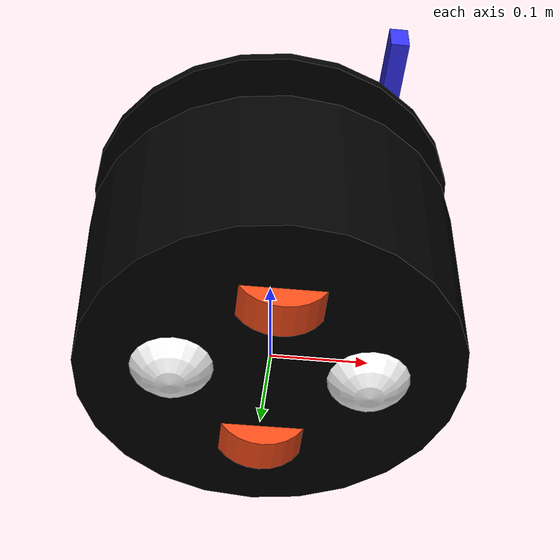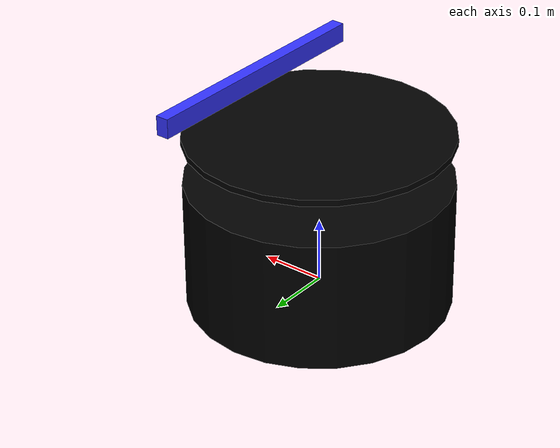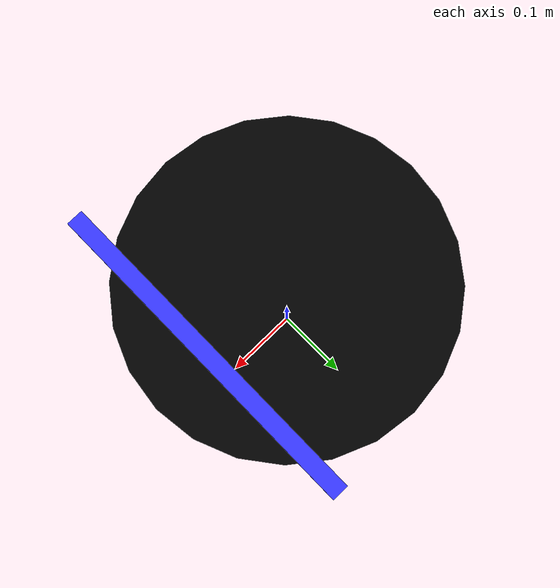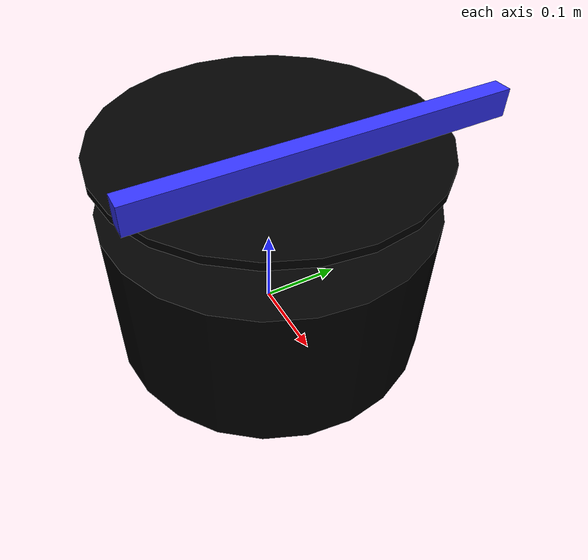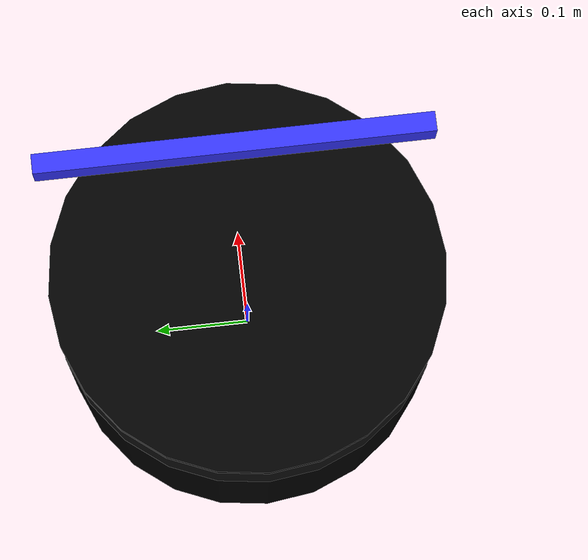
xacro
<?xml version="1.0"?>
<robot xmlns:xacro="http://www.ros.org/wiki/xacro"  name="robot">

    <xacro:include filename="inertial_macros.xacro" />
    <xacro:include filename="black_donut.xacro" />

    <xacro:include filename="ros2_control.xacro" />

    <xacro:include filename="lidar.xacro" />

    <xacro:include filename="depth_camera.xacro" />

    <xacro:include filename="gps.xacro" />
    <xacro:include filename="imu.xacro" />

</robot>

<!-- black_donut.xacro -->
<robot xmlns:xacro="http://www.ros.org/wiki/xacro" name="black_donut">

    <xacro:include filename="inertial_macros.xacro"/>

    <material name="white">
        <color rgba="1 1 1 1" />
    </material>

    <material name="orange">
        <color rgba="1 0.3 0.1 1"/>
    </material>

    <material name="blue">
        <color rgba="0.2 0.2 1 1"/>
    </material>

    <material name="black">
        <color rgba="0 0 0 1"/>
    </material>

    <!-- BASE_FOOTPRINT LINK -->

    <link name="base_footprint">

    </link>

    <!-- BASE LINK -->

    <joint name="base_link_joint" type="fixed">
        <parent link="base_footprint"/>
        <child link="base_link"/>
        <origin xyz="0 0 0"/>
    </joint>

    <link name="base_link">
        <visual>
            <origin xyz="0 0 0.075"/>
            <geometry>
                <cylinder radius="0.2" length="0.2"/>
            </geometry>1
            <material name="black"/>
        </visual>
        <collision>
            <origin xyz="0 0 0.075"/>
            <geometry>
                <box size="0.3 0.3 0.15"/>
            </geometry>
        </collision>
        <xacro:inertial_box mass="0.5" x="0.3" y="0.3" z="0.15">
            <origin xyz="0 0 0.075" rpy="0 0 0"/>
        </xacro:inertial_box>
    </link>

    <!-- TOP PLATE-->
    <joint name="hat_joint" type="fixed">
        <parent link="base_link"/>
        <child link="hat_link"/>
        <origin xyz="0 0 0"/>
    </joint>

    <link name="hat_link">
        <visual>
            <origin xyz="0 0 0.245"/>
            <geometry>
                <cylinder radius="0.2" length="0.01"/>
            </geometry>1
            <material name="black"/>
        </visual>
        <collision>
            <origin xyz="0 0 0.245"/>
            <geometry>
                <box size="0.3 0.3 0.15"/>
            </geometry>
        </collision>
        <xacro:inertial_box mass="0.1" x="0.1" y="0.1" z="0.1">
            <origin xyz="0 0 0.245" rpy="0 0 0"/>
        </xacro:inertial_box>
    </link>

    <!-- LEFT WHEEL LINK -->

    <joint name="left_wheel_joint" type="continuous">
        <parent link="base_link"/>
        <child link="left_wheel"/>
        <origin xyz="0 0.1 0" rpy="-${pi/2} 0 0" />
        <axis xyz="0 0 1"/>
    </joint>

    <link name="left_wheel">
        <visual>
            <geometry>
                <cylinder radius="0.05" length="0.04"/>
            </geometry>
            <material name="orange"/>
        </visual>
        <collision>
            <geometry>
                <cylinder radius="0.05" length="0.04"/>
            </geometry>
        </collision>
        <xacro:inertial_cylinder mass="0.1" length="0.04" radius="0.05">
            <origin xyz="0 0 0" rpy="0 0 0"/>
        </xacro:inertial_cylinder>
    </link>

    <!-- RIGHT WHEEL LINK -->

    <joint name="right_wheel_joint" type="continuous">
        <parent link="base_link"/>
        <child link="right_wheel"/>
        <origin xyz="0 -0.1 0" rpy="${pi/2} 0 0" />
        <axis xyz="0 0 -1"/>
    </joint>

    <link name="right_wheel">
        <visual>
            <geometry>
                <cylinder radius="0.05" length="0.04"/>
            </geometry>
            <material name="orange"/>
        </visual>
        <collision>
            <geometry>
                <cylinder radius="0.05" length="0.04"/>
            </geometry>
        </collision>
        <xacro:inertial_cylinder mass="0.1" length="0.04" radius="0.05">
            <origin xyz="0 0 0" rpy="0 0 0"/>
        </xacro:inertial_cylinder>
    </link>

    <!-- CASTER WHEEL LINK -->

    <joint name="caster_wheel_f_joint" type="fixed">
        <parent link="base_link"/>
        <child link="caster_wheel_f"/>
        <origin xyz="0.1 0 0"/>
    </joint>

    <link name="caster_wheel_f">
        <visual>
            <geometry>
                <sphere radius="0.05"/>
            </geometry>
            <material name="white"/>
        </visual>
        <collision>
            <geometry>
                <sphere radius="0.05"/>
            </geometry>
        </collision>
        <xacro:inertial_sphere mass="0.1" radius="0.05">
            <origin xyz="0 0 0" rpy="0 0 0"/>
        </xacro:inertial_sphere>
    </link>

    <joint name="caster_wheel_joint_b" type="fixed">
        <parent link="base_link"/>
        <child link="caster_wheel_b"/>
        <origin xyz="-0.1 0 0"/>
    </joint>

    <link name="caster_wheel_b">
        <visual>
            <geometry>
                <sphere radius="0.05"/>
            </geometry>
            <material name="white"/>
        </visual>
        <collision>
            <geometry>
                <sphere radius="0.05"/>
            </geometry>
        </collision>
        <xacro:inertial_sphere mass="0.1" radius="0.05">
            <origin xyz="0 0 0" rpy="0 0 0"/>
        </xacro:inertial_sphere>
    </link>

    <gazebo reference="base_link">
        <material>Gazebo/Black</material>
    </gazebo>

    <gazebo reference="right_wheel">
        <material>Gazebo/Orange</material>
    </gazebo>
    <gazebo reference="left_wheel">
        <material>Gazebo/Orange</material>
    </gazebo>
    <gazebo reference="hat_link">
        <material>Gazebo/Black</material>
        <mu1 value="0.001"/>
        <mu2 value="0.001"/>
    </gazebo>

    <gazebo reference="caster_wheel_f">
        <material>Gazebo/Black</material>
        <mu1 value="0.001"/>
        <mu2 value="0.001"/>
    </gazebo>
    <gazebo reference="caster_wheel_b">
        <material>Gazebo/Black</material>
        <mu1 value="0.001"/>
        <mu2 value="0.001"/>
    </gazebo>

</robot>

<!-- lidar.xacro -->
<robot xmlns:xacro="http://www.ros.org/wiki/xacro" >

    <joint name="laser_joint" type="fixed">
        <parent link="base_link"/>
        <child link="laser_frame"/>
        <origin xyz="0 0 0.175" rpy="0 0 0"/>
    </joint>

    <link name="laser_frame">
        <visual>
            <geometry>
                <cylinder radius="0.05" length="0.06"/>
            </geometry>
            <material name="red"/>
        </visual>
        <collision>
            <geometry>
                <cylinder radius="0.05" length="0.06"/>
            </geometry>
        </collision>
        <xacro:inertial_cylinder mass="0.1" length="0.06" radius="0.05">
            <origin xyz="0 0 0" rpy="0 0 0"/>
        </xacro:inertial_cylinder>
    </link>

    <gazebo reference="laser_frame">
        <material>Gazebo/Grey</material>

        <sensor name="base_scan" type="ray">
            <pose> 0 0 0 0 0 0 </pose>
            <visualize>false</visualize>
            <update_rate>10</update_rate>
            <ray>
                <scan>
                    <horizontal>
                        <samples>360</samples>
                        <min_angle>-3.14</min_angle>
                        <max_angle>3.14</max_angle>
                    </horizontal>
                </scan>
                <range>
                    <min>0.3</min>
                    <max>12</max>
                </range>
            </ray>
            <plugin name="laser_controller" filename="libgazebo_ros_ray_sensor.so">
                <ros>
                    <argument>~/out:=scan</argument>
                </ros>
                <output_type>sensor_msgs/LaserScan</output_type>
                <frame_name>laser_frame</frame_name>
            </plugin>
        </sensor>
    </gazebo>

</robot>

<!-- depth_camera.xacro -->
<robot xmlns:xacro="http://www.ros.org/wiki/xacro" >

    <joint name="camera_joint" type="fixed">
        <parent link="base_link"/>
        <child link="camera_frame"/>
        <origin xyz="0 0 0.3" rpy="0 0 0"/>
    </joint>

    <link name="camera_frame">
    </link>

    <joint name="camera_optical_joint" type="fixed">
        <parent link="camera_frame"/>
        <child link="camera_optical_link"/>
        <origin xyz="0.12 0 0" rpy="-1.5707 0 -1.5707"/>
    </joint>

    <link name="camera_optical_link">
        <visual>
            <geometry>
                <box size="0.4 0.03 0.02"/>
            </geometry>
            <material name="blue"/>
        </visual>
        <collision>
            <geometry>
                <box size="0.4 0.03 0.02"/>
            </geometry>
        </collision>
    </link>

    <gazebo reference="camera_frame">
        <material>Gazebo/Blue</material>

        <sensor name="camera" type="depth">
            <pose>0.064 -0.065 0.094  0 0 0 </pose>
            <visualize>true</visualize>
            <update_rate>10</update_rate>
            <camera>
                <horizontal_fov>1.089</horizontal_fov>
                <image>
                    <format>B8G8R8</format>
                    <width>640</width>
                    <height>480</height>
                </image>
                <clip>
                    <near>0.05</near>
                    <far>8.0</far>
                </clip>
            </camera>
            <plugin name="camera_controller" filename="libgazebo_ros_camera.so">
                <frame_name>camera_optical_link</frame_name>
            </plugin>
        </sensor>
    </gazebo>

</robot>

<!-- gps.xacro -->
<robot xmlns:xacro="http://www.ros.org/wiki/xacro" >

    <joint name="gps_joint" type="fixed">
        <parent link="hat_link"/>
        <child link="gps_frame"/>
        <origin xyz="0 0 0.175" rpy="0 0 0"/>
    </joint>

    <link name="gps_frame">
        <visual>
            <geometry>
                <cylinder radius="0.05" length="0.06"/>
            </geometry>
            <material name="red"/>
        </visual>
        <collision>
            <geometry>
                <cylinder radius="0.05" length="0.06"/>
            </geometry>
        </collision>
        <xacro:inertial_cylinder mass="0.1" length="0.06" radius="0.05">
            <origin xyz="0.2 0 0" rpy="0 0 0"/>
        </xacro:inertial_cylinder>
    </link>

    <gazebo reference="gps_frame">
        <material>Gazebo/Orange</material>

        <sensor name="gps" type="gps">
          <always_on>true</always_on>
          <update_rate>1</update_rate>
          <pose>0 0 0 0 0 0</pose>
          <gps>
            <position_sensing>
              <horizontal>
                <noise type="gaussian">
                  <mean>0.0</mean>
                  <stddev>0.01</stddev>
                </noise>
              </horizontal>
              <vertical>
                <noise type="gaussian">
                  <mean>0.0</mean>
                  <stddev>0.01</stddev>
                </noise>
              </vertical>
            </position_sensing>
          </gps>
          <plugin name="gps_plugin" filename="libgazebo_ros_gps_sensor.so">
            <ros>
              <remapping>~/out:=/gps/fix</remapping>
            </ros>
          </plugin>
        </sensor>

    </gazebo>

</robot>

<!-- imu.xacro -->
<robot xmlns:xacro="http://www.ros.org/wiki/xacro" >

    <joint name="imu_joint" type="fixed">
        <parent link="base_link"/>
        <child link="imu_link"/>
        <origin xyz="0 0 0.175" rpy="0 0 0"/>
    </joint>

    <link name="imu_link">
        <visual>
            <geometry>
                <box size="0.02 0.02 0.01"/>
            </geometry>
            <material name="red"/>
        </visual>
        <collision>
            <geometry>
                <box size="0.02 0.02 0.01"/>
            </geometry>
        </collision>
    </link>

 <gazebo reference="imu_link">
    <gravity>true</gravity>
    <sensor name="imu_sensor" type="imu">
      <always_on>true</always_on>
      <update_rate>100</update_rate>
      <visualize>true</visualize>
      <topic>__default_topic__</topic>
      <plugin filename="libgazebo_ros_imu_sensor.so" name="imu_plugin">
        <topicName>imu</topicName>
        <bodyName>imu_link</bodyName>
        <updateRateHZ>10.0</updateRateHZ>
        <gaussianNoise>0.0</gaussianNoise>
        <xyzOffset>0 0 0</xyzOffset>
        <rpyOffset>0 0 0</rpyOffset>
        <frameName>imu_link</frameName>
        <initialOrientationAsReference>false</initialOrientationAsReference>
      </plugin>
      <pose>0 0 0 0 0 0</pose>
    </sensor>
  </gazebo>

</robot>
